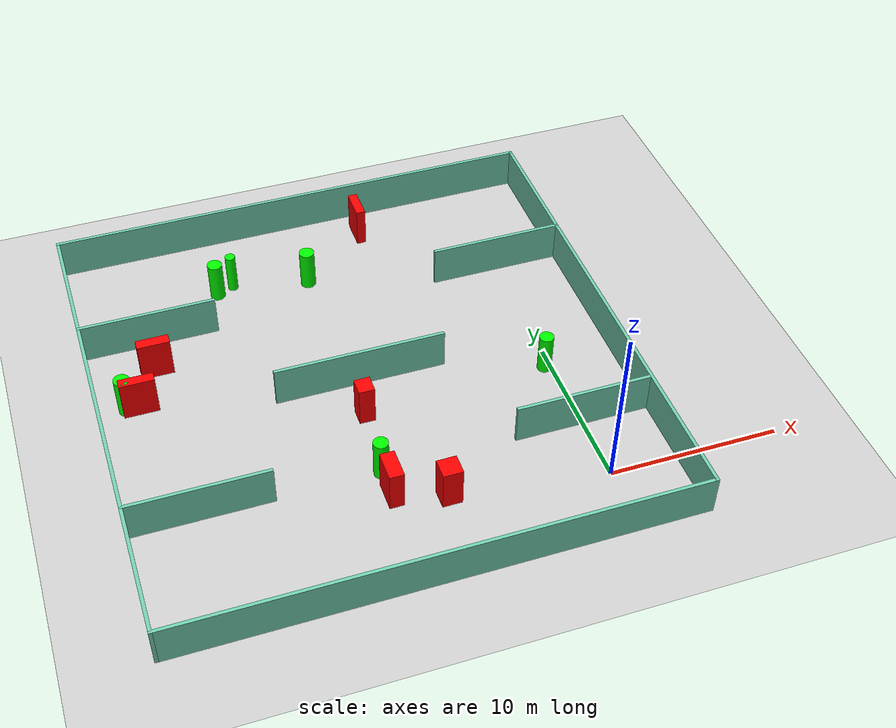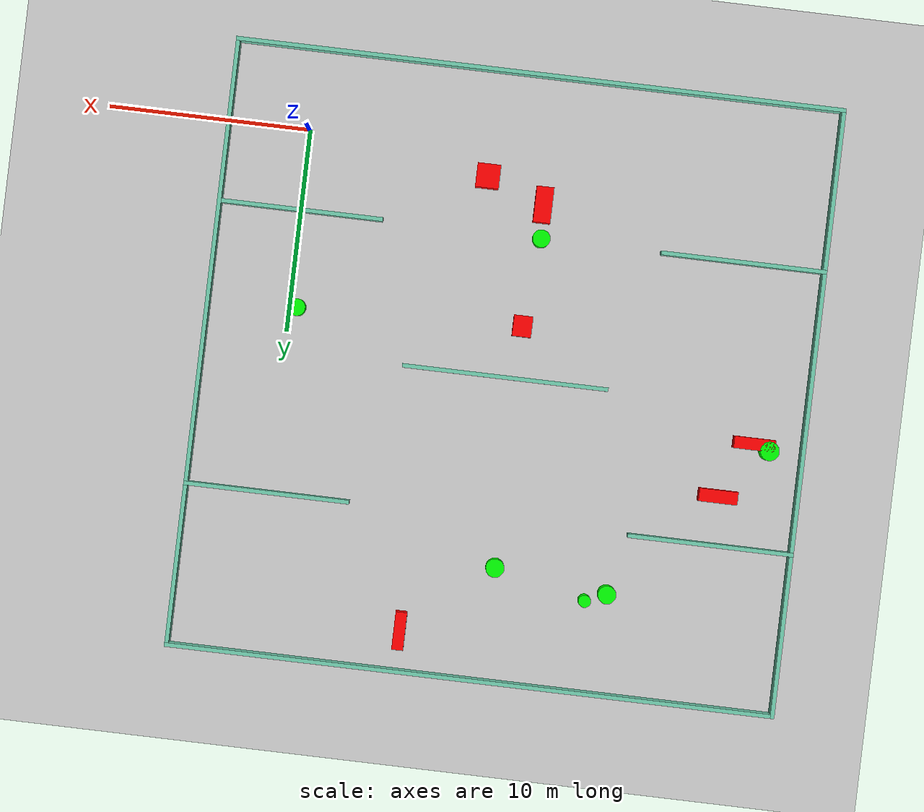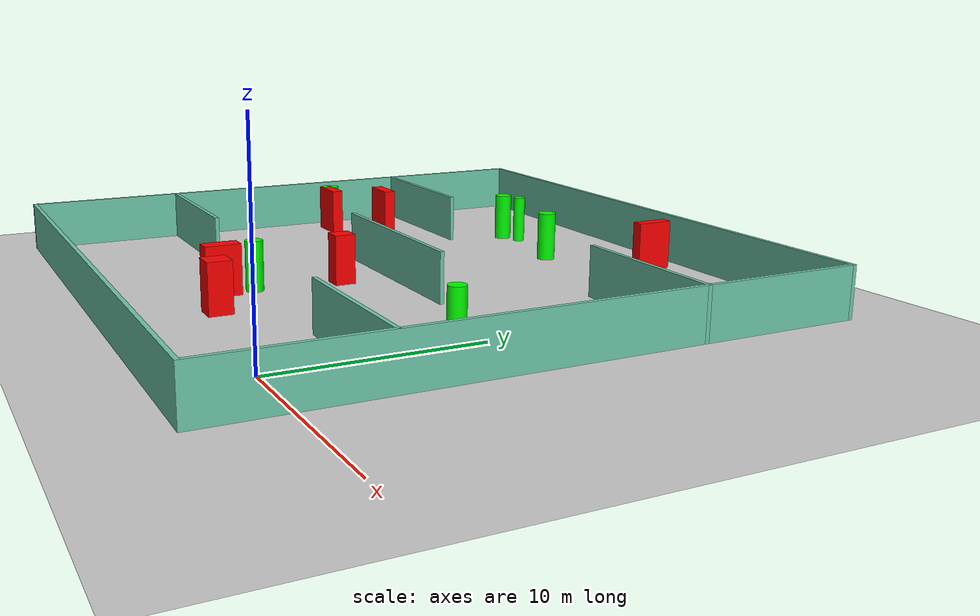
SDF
<sdf version="1.7">
 <world name="default">
  <light name="sun" type="directional">
   <pose>0 0 10 0 -0 0</pose>
   <diffuse>0.8 0.8 0.8 1</diffuse>
   <specular>0.2 0.2 0.2 1</specular>
   <attenuation>
    <range>1000</range>
    <constant>0.9</constant>
    <linear>0.01</linear>
    <quadratic>0.001</quadratic>
   </attenuation>
   <direction>-0.5 0.1 -0.9</direction>
   <spot><inner_angle>0</inner_angle><outer_angle>0</outer_angle><falloff>0</falloff></spot>
  </light>
  <model name="ground_plane">
   <static>1</static>
   <link name="link">
    <collision name="collision">
     <geometry><plane><normal>0 0 1</normal><size>100 100</size></plane></geometry>
     <surface>
      <contact><collide_bitmask>65535</collide_bitmask></contact>
      <friction><ode><mu>100</mu><mu2>50</mu2></ode></friction>
     </surface>
    </collision>
    <visual name="visual">
     <cast_shadows>0</cast_shadows>
     <geometry><plane><normal>0 0 1</normal><size>100 100</size></plane></geometry>
     <material>
      <script><uri>file://media/materials/scripts/gazebo.material</uri><name>Gazebo/Grey</name></script>
     </material>
    </visual>
   </link>
  </model>
  <gravity>0 0 -9.8</gravity>
  <magnetic_field>6e-06 2.3e-05 -4.2e-05</magnetic_field>
  <atmosphere type="adiabatic"/>
  <physics type="ode">
   <max_step_size>0.001</max_step_size>
   <real_time_factor>1</real_time_factor>
   <real_time_update_rate>1000</real_time_update_rate>
  </physics>
  <scene><ambient>0.4 0.4 0.4 1</ambient><background>0.7 0.7 0.7 1</background><shadows>1</shadows></scene>
  <spherical_coordinates>
   <surface_model>EARTH_WGS84</surface_model>
   <latitude_deg>0</latitude_deg>
   <longitude_deg>0</longitude_deg>
   <elevation>0</elevation>
   <heading_deg>0</heading_deg>
  </spherical_coordinates>
  <model name="my_base_walls">
   <link name="Wall_10">
    <collision name="Wall_10_Collision">
     <geometry><box><size>8.2 0.2 2.5</size></box></geometry>
     <pose>0 0 1.25 0 -0 0</pose>
    </collision>
    <visual name="Wall_10_Visual">
     <pose>0 0 1.25 0 -0 0</pose>
     <geometry><box><size>8.2 0.2 2.5</size></box></geometry>
     <material>
      <script><uri>file://media/materials/scripts/gazebo.material</uri><name>Gazebo/Grey</name></script>
      <ambient>0.435294 0.796078 0.67451 1</ambient>
     </material>
     <meta><layer>0</layer></meta>
    </visual>
    <pose>-11 -7 0 0 -0 0</pose>
   </link>
   <link name="Wall_12">
    <collision name="Wall_12_Collision">
     <geometry><box><size>8.2 0.2 2.5</size></box></geometry>
     <pose>0 0 1.25 0 -0 0</pose>
    </collision>
    <visual name="Wall_12_Visual">
     <pose>0 0 1.25 0 -0 0</pose>
     <geometry><box><size>8.2 0.2 2.5</size></box></geometry>
     <material>
      <script><uri>file://media/materials/scripts/gazebo.material</uri><name>Gazebo/Grey</name></script>
      <ambient>0.435294 0.796078 0.67451 1</ambient>
     </material>
     <meta><layer>0</layer></meta>
    </visual>
    <pose>-11 7 0 0 -0 0</pose>
   </link>
   <link name="Wall_14">
    <collision name="Wall_14_Collision">
     <geometry><box><size>8.2 0.2 2.5</size></box></geometry>
     <pose>0 0 1.25 0 -0 0</pose>
    </collision>
    <visual name="Wall_14_Visual">
     <pose>0 0 1.25 0 -0 0</pose>
     <geometry><box><size>8.2 0.2 2.5</size></box></geometry>
     <material>
      <script><uri>file://media/materials/scripts/gazebo.material</uri><name>Gazebo/Grey</name></script>
      <ambient>0.435294 0.796078 0.67451 1</ambient>
     </material>
     <meta><layer>0</layer></meta>
    </visual>
    <pose>11 7 0 0 -0 3.14159</pose>
   </link>
   <link name="Wall_16">
    <collision name="Wall_16_Collision">
     <geometry><box><size>10.2 0.2 2.5</size></box></geometry>
     <pose>0 0 1.25 0 -0 0</pose>
    </collision>
    <visual name="Wall_16_Visual">
     <pose>0 0 1.25 0 -0 0</pose>
     <geometry><box><size>10.2 0.2 2.5</size></box></geometry>
     <material>
      <script><uri>file://media/materials/scripts/gazebo.material</uri><name>Gazebo/Grey</name></script>
      <ambient>0.435294 0.796078 0.67451 1</ambient>
     </material>
     <meta><layer>0</layer></meta>
    </visual>
    <pose>0 0 0 0 -0 3.14159</pose>
   </link>
   <link name="Wall_2">
    <collision name="Wall_2_Collision">
     <geometry><box><size>30.2 0.2 2.5</size></box></geometry>
     <pose>0 0 1.25 0 -0 0</pose>
    </collision>
    <visual name="Wall_2_Visual">
     <pose>0 0 1.25 0 -0 0</pose>
     <geometry><box><size>30.2 0.2 2.5</size></box></geometry>
     <material>
      <script><uri>file://media/materials/scripts/gazebo.material</uri><name>Gazebo/Grey</name></script>
      <ambient>0.435294 0.796078 0.67451 1</ambient>
     </material>
     <meta><layer>0</layer></meta>
    </visual>
    <pose>0 -15 0 0 -0 3.14159</pose>
   </link>
   <link name="Wall_3">
    <collision name="Wall_3_Collision">
     <geometry><box><size>30.2 0.2 2.5</size></box></geometry>
     <pose>0 0 1.25 0 -0 0</pose>
    </collision>
    <visual name="Wall_3_Visual">
     <pose>0 0 1.25 0 -0 0</pose>
     <geometry><box><size>30.2 0.2 2.5</size></box></geometry>
     <material>
      <script><uri>file://media/materials/scripts/gazebo.material</uri><name>Gazebo/Grey</name></script>
      <ambient>0.435294 0.796078 0.67451 1</ambient>
     </material>
     <meta><layer>0</layer></meta>
    </visual>
    <pose>-15 0 0 0 -0 1.5708</pose>
   </link>
   <link name="Wall_4">
    <collision name="Wall_4_Collision">
     <geometry><box><size>30.2 0.2 2.5</size></box></geometry>
     <pose>0 0 1.25 0 -0 0</pose>
    </collision>
    <visual name="Wall_4_Visual">
     <pose>0 0 1.25 0 -0 0</pose>
     <geometry><box><size>30.2 0.2 2.5</size></box></geometry>
     <material>
      <script><uri>file://media/materials/scripts/gazebo.material</uri><name>Gazebo/Grey</name></script>
      <ambient>0.435294 0.796078 0.67451 1</ambient>
     </material>
     <meta><layer>0</layer></meta>
    </visual>
    <pose>0 15 0 0 -0 0</pose>
   </link>
   <link name="Wall_6">
    <collision name="Wall_6_Collision">
     <geometry><box><size>30.2 0.2 2.5</size></box></geometry>
     <pose>0 0 1.25 0 -0 0</pose>
    </collision>
    <visual name="Wall_6_Visual">
     <pose>0 0 1.25 0 -0 0</pose>
     <geometry><box><size>30.2 0.2 2.5</size></box></geometry>
     <material>
      <script><uri>file://media/materials/scripts/gazebo.material</uri><name>Gazebo/Grey</name></script>
      <ambient>0.435294 0.796078 0.67451 1</ambient>
     </material>
     <meta><layer>0</layer></meta>
    </visual>
    <pose>15 0 0 0 -0 1.5708</pose>
   </link>
   <link name="Wall_8">
    <collision name="Wall_8_Collision">
     <geometry><box><size>8.2 0.2 2.5</size></box></geometry>
     <pose>0 0 1.25 0 -0 0</pose>
    </collision>
    <visual name="Wall_8_Visual">
     <pose>0 0 1.25 0 -0 0</pose>
     <geometry><box><size>8.2 0.2 2.5</size></box></geometry>
     <material>
      <script><uri>file://media/materials/scripts/gazebo.material</uri><name>Gazebo/Grey</name></script>
      <ambient>0.435294 0.796078 0.67451 1</ambient>
     </material>
     <meta><layer>0</layer></meta>
    </visual>
    <pose>11 -7 0 0 -0 3.14159</pose>
   </link>
   <static>1</static>
   <pose>-11 11 0 0 -0 0</pose>
  </model>
  <model name="cylinder1">
   <static>1</static>
   <link name="link">
    <inertial>
     <mass>1</mass>
     <inertia><ixx>0.5</ixx><ixy>0</ixy><ixz>0</ixz><iyy>0.5</iyy><iyz>0</iyz><izz>1</izz></inertia>
    </inertial>
    <collision name="collision">
     <geometry><cylinder><radius>0.4372744654640967</radius><length>2.5</length></cylinder></geometry>
    </collision>
    <visual name="visual">
     <geometry><cylinder><radius>0.4372744654640967</radius><length>2.5</length></cylinder></geometry>
     <material>
      <ambient>0 1 0 1</ambient>
      <diffuse>0 1 0 1</diffuse>
      <specular>0.1 0.1 0.1 1</specular>
      <emissive>0 0 0 0</emissive>
     </material>
    </visual>
   </link>
   <pose>-11.96003013510477 4.014493877984814 1.25 0 0 0</pose>
  </model>
  <model name="cylinder2">
   <static>1</static>
   <link name="link">
    <inertial>
     <mass>1</mass>
     <inertia><ixx>0.5</ixx><ixy>0</ixy><ixz>0</ixz><iyy>0.5</iyy><iyz>0</iyz><izz>1</izz></inertia>
    </inertial>
    <collision name="collision">
     <geometry><cylinder><radius>0.47221289116156207</radius><length>2.5</length></cylinder></geometry>
    </collision>
    <visual name="visual">
     <geometry><cylinder><radius>0.47221289116156207</radius><length>2.5</length></cylinder></geometry>
     <material>
      <ambient>0 1 0 1</ambient>
      <diffuse>0 1 0 1</diffuse>
      <specular>0.1 0.1 0.1 1</specular>
      <emissive>0 0 0 0</emissive>
     </material>
    </visual>
   </link>
   <pose>-24.346859383397113 13.07111232888381 1.25 0 0 0</pose>
  </model>
  <model name="cylinder3">
   <static>1</static>
   <link name="link">
    <inertial>
     <mass>1</mass>
     <inertia><ixx>0.5</ixx><ixy>0</ixy><ixz>0</ixz><iyy>0.5</iyy><iyz>0</iyz><izz>1</izz></inertia>
    </inertial>
    <collision name="collision">
     <geometry><cylinder><radius>0.4602049362064762</radius><length>2.5</length></cylinder></geometry>
    </collision>
    <visual name="visual">
     <geometry><cylinder><radius>0.4602049362064762</radius><length>2.5</length></cylinder></geometry>
     <material>
      <ambient>0 1 0 1</ambient>
      <diffuse>0 1 0 1</diffuse>
      <specular>0.1 0.1 0.1 1</specular>
      <emissive>0 0 0 0</emissive>
     </material>
    </visual>
   </link>
   <pose>-11.604776745038958 20.36753541323013 1.25 0 0 0</pose>
  </model>
  <model name="cylinder4">
   <static>1</static>
   <link name="link">
    <inertial>
     <mass>1</mass>
     <inertia><ixx>0.5</ixx><ixy>0</ixy><ixz>0</ixz><iyy>0.5</iyy><iyz>0</iyz><izz>1</izz></inertia>
    </inertial>
    <collision name="collision">
     <geometry><cylinder><radius>0.3106499213714043</radius><length>2.5</length></cylinder></geometry>
    </collision>
    <visual name="visual">
     <geometry><cylinder><radius>0.3106499213714043</radius><length>2.5</length></cylinder></geometry>
     <material>
      <ambient>0 1 0 1</ambient>
      <diffuse>0 1 0 1</diffuse>
      <specular>0.1 0.1 0.1 1</specular>
      <emissive>0 0 0 0</emissive>
     </material>
    </visual>
   </link>
   <pose>-16.173635634174396 21.463092767048234 1.25 0 0 0</pose>
  </model>
  <model name="cylinder5">
   <static>1</static>
   <link name="link">
    <inertial>
     <mass>1</mass>
     <inertia><ixx>0.5</ixx><ixy>0</ixy><ixz>0</ixz><iyy>0.5</iyy><iyz>0</iyz><izz>1</izz></inertia>
    </inertial>
    <collision name="collision">
     <geometry><cylinder><radius>0.45090476457195955</radius><length>2.5</length></cylinder></geometry>
    </collision>
    <visual name="visual">
     <geometry><cylinder><radius>0.45090476457195955</radius><length>2.5</length></cylinder></geometry>
     <material>
      <ambient>0 1 0 1</ambient>
      <diffuse>0 1 0 1</diffuse>
      <specular>0.1 0.1 0.1 1</specular>
      <emissive>0 0 0 0</emissive>
     </material>
    </visual>
   </link>
   <pose>-17.229451760209898 21.025907855837335 1.25 0 0 0</pose>
  </model>
  <model name="cylinder6">
   <static>1</static>
   <link name="link">
    <inertial>
     <mass>1</mass>
     <inertia><ixx>0.5</ixx><ixy>0</ixy><ixz>0</ixz><iyy>0.5</iyy><iyz>0</iyz><izz>1</izz></inertia>
    </inertial>
    <collision name="collision">
     <geometry><cylinder><radius>0.4258010198801241</radius><length>2.5</length></cylinder></geometry>
    </collision>
    <visual name="visual">
     <geometry><cylinder><radius>0.4258010198801241</radius><length>2.5</length></cylinder></geometry>
     <material>
      <ambient>0 1 0 1</ambient>
      <diffuse>0 1 0 1</diffuse>
      <specular>0.1 0.1 0.1 1</specular>
      <emissive>0 0 0 0</emissive>
     </material>
    </visual>
   </link>
   <pose>-0.40785694819639673 8.779960656199837 1.25 0 0 0</pose>
  </model>
  <model name="box1">
   <static>1</static>
   <link name="link">
    <inertial>
     <mass>1</mass>
     <inertia><ixx>0.083</ixx><ixy>0</ixy><ixz>0</ixz><iyy>0.083</iyy><iyz>0</iyz><izz>0.083</izz></inertia>
    </inertial>
    <collision name="collision">
     <geometry><box><size>0.5687074534158214 1.8757485162567522 2.5</size></box></geometry>
    </collision>
    <visual name="visual">
     <geometry><box><size>0.5687074534158214 1.8757485162567522 2.5</size></box></geometry>
     <material>
      <ambient>1 0 0 1</ambient>
      <diffuse>1 0 0 1</diffuse>
      <specular>0.1 0.1 0.1 1</specular>
      <emissive>0 0 0 0</emissive>
     </material>
    </visual>
    <sensor name="my_contact" type="contact">
     <contact><collision>box_collision</collision><topic>__default_topic__</topic></contact>
    </sensor>
   </link>
   <pose>-7.301717904046331 23.98972953384923 1.25 0 0 0</pose>
  </model>
  <model name="box2">
   <static>1</static>
   <link name="link">
    <inertial>
     <mass>1</mass>
     <inertia><ixx>0.083</ixx><ixy>0</ixy><ixz>0</ixz><iyy>0.083</iyy><iyz>0</iyz><izz>0.083</izz></inertia>
    </inertial>
    <collision name="collision">
     <geometry><box><size>1.1565061967742314 1.186555351775443 2.5</size></box></geometry>
    </collision>
    <visual name="visual">
     <geometry><box><size>1.1565061967742314 1.186555351775443 2.5</size></box></geometry>
     <material>
      <ambient>1 0 0 1</ambient>
      <diffuse>1 0 0 1</diffuse>
      <specular>0.1 0.1 0.1 1</specular>
      <emissive>0 0 0 0</emissive>
     </material>
    </visual>
    <sensor name="my_contact" type="contact">
     <contact><collision>box_collision</collision><topic>__default_topic__</topic></contact>
    </sensor>
   </link>
   <pose>-8.996928396837912 1.2563098796346317 1.25 0 0 0</pose>
  </model>
  <model name="box3">
   <static>1</static>
   <link name="link">
    <inertial>
     <mass>1</mass>
     <inertia><ixx>0.083</ixx><ixy>0</ixy><ixz>0</ixz><iyy>0.083</iyy><iyz>0</iyz><izz>0.083</izz></inertia>
    </inertial>
    <collision name="collision">
     <geometry><box><size>0.8559026620989842 1.7783861652351225 2.5</size></box></geometry>
    </collision>
    <visual name="visual">
     <geometry><box><size>0.8559026620989842 1.7783861652351225 2.5</size></box></geometry>
     <material>
      <ambient>1 0 0 1</ambient>
      <diffuse>1 0 0 1</diffuse>
      <specular>0.1 0.1 0.1 1</specular>
      <emissive>0 0 0 0</emissive>
     </material>
    </visual>
    <sensor name="my_contact" type="contact">
     <contact><collision>box_collision</collision><topic>__default_topic__</topic></contact>
    </sensor>
   </link>
   <pose>-11.867927093482894 2.3437471468656614 1.25 0 0 0</pose>
  </model>
  <model name="box4">
   <static>1</static>
   <link name="link">
    <inertial>
     <mass>1</mass>
     <inertia><ixx>0.083</ixx><ixy>0</ixy><ixz>0</ixz><iyy>0.083</iyy><iyz>0</iyz><izz>0.083</izz></inertia>
    </inertial>
    <collision name="collision">
     <geometry><box><size>2.044752837021303 0.5944072879538741 2.5</size></box></geometry>
    </collision>
    <visual name="visual">
     <geometry><box><size>2.044752837021303 0.5944072879538741 2.5</size></box></geometry>
     <material>
      <ambient>1 0 0 1</ambient>
      <diffuse>1 0 0 1</diffuse>
      <specular>0.1 0.1 0.1 1</specular>
      <emissive>0 0 0 0</emissive>
     </material>
    </visual>
    <sensor name="my_contact" type="contact">
     <contact><collision>box_collision</collision><topic>__default_topic__</topic></contact>
    </sensor>
   </link>
   <pose>-23.573832171603286 12.80520657720037 1.25 0 0 0</pose>
  </model>
  <model name="box5">
   <static>1</static>
   <link name="link">
    <inertial>
     <mass>1</mass>
     <inertia><ixx>0.083</ixx><ixy>0</ixy><ixz>0</ixz><iyy>0.083</iyy><iyz>0</iyz><izz>0.083</izz></inertia>
    </inertial>
    <collision name="collision">
     <geometry><box><size>0.936710305534872 1.0434622226847223 2.5</size></box></geometry>
    </collision>
    <visual name="visual">
     <geometry><box><size>0.936710305534872 1.0434622226847223 2.5</size></box></geometry>
     <material>
      <ambient>1 0 0 1</ambient>
      <diffuse>1 0 0 1</diffuse>
      <specular>0.1 0.1 0.1 1</specular>
      <emissive>0 0 0 0</emissive>
     </material>
    </visual>
    <sensor name="my_contact" type="contact">
     <contact><collision>box_collision</collision><topic>__default_topic__</topic></contact>
    </sensor>
   </link>
   <pose>-11.547190644021656 8.399765695237829 1.25 0 0 0</pose>
  </model>
  <model name="box6">
   <static>1</static>
   <link name="link">
    <inertial>
     <mass>1</mass>
     <inertia><ixx>0.083</ixx><ixy>0</ixy><ixz>0</ixz><iyy>0.083</iyy><iyz>0</iyz><izz>0.083</izz></inertia>
    </inertial>
    <collision name="collision">
     <geometry><box><size>1.9170499701376769 0.6427544210185939 2.5</size></box></geometry>
    </collision>
    <visual name="visual">
     <geometry><box><size>1.9170499701376769 0.6427544210185939 2.5</size></box></geometry>
     <material>
      <ambient>1 0 0 1</ambient>
      <diffuse>1 0 0 1</diffuse>
      <specular>0.1 0.1 0.1 1</specular>
      <emissive>0 0 0 0</emissive>
     </material>
    </visual>
    <sensor name="my_contact" type="contact">
     <contact><collision>box_collision</collision><topic>__default_topic__</topic></contact>
    </sensor>
   </link>
   <pose>-22.101566804591496 15.575443444578788 1.25 0 0 0</pose>
  </model>
 </world>
</sdf>
